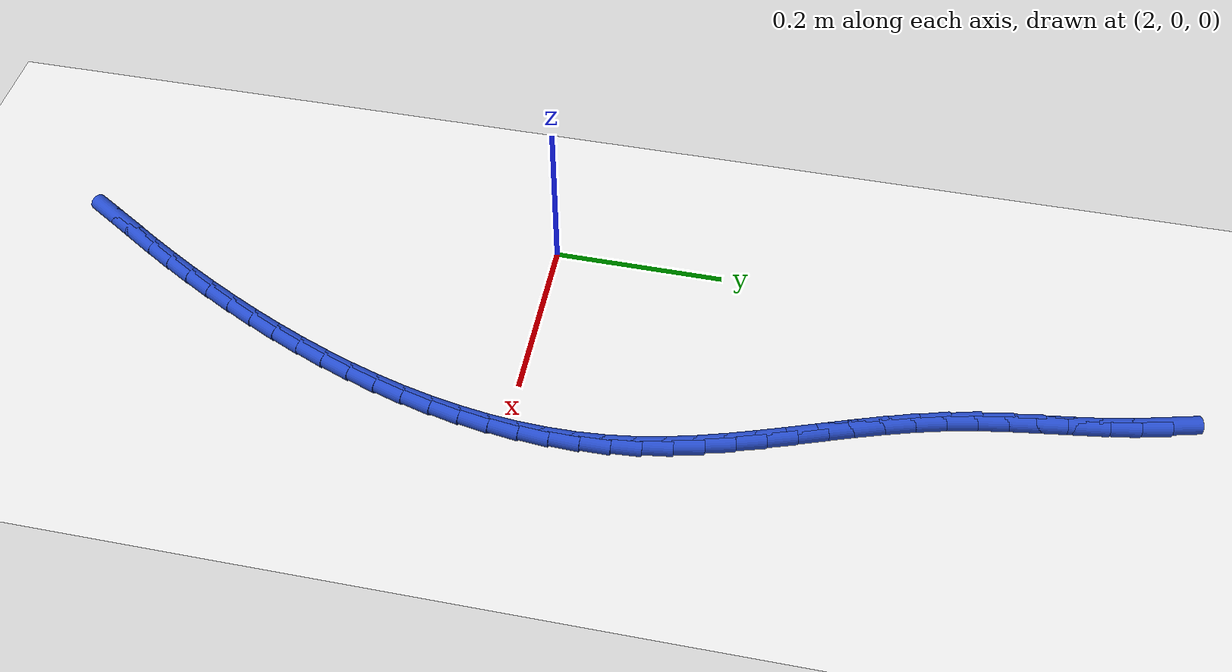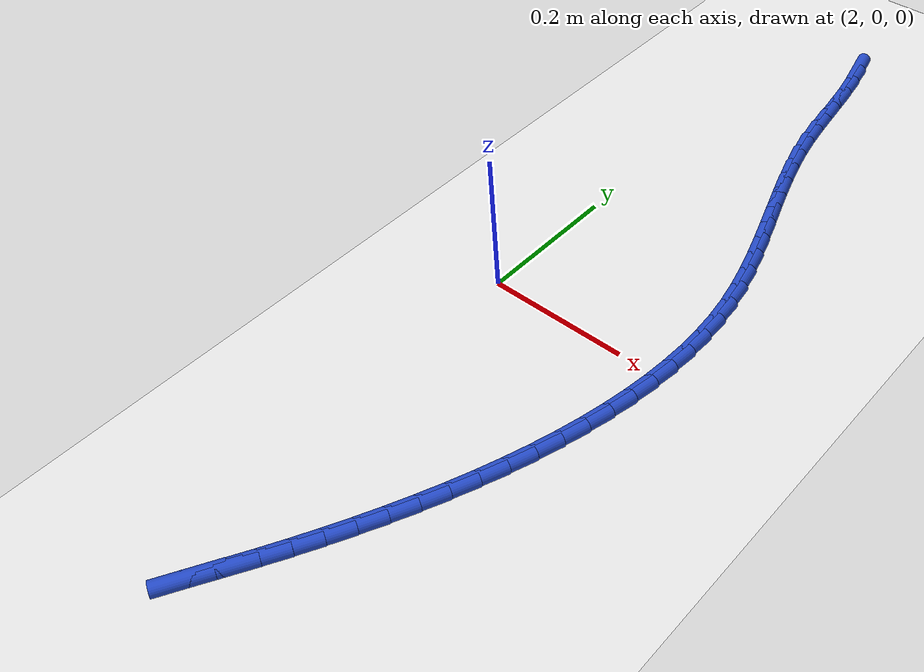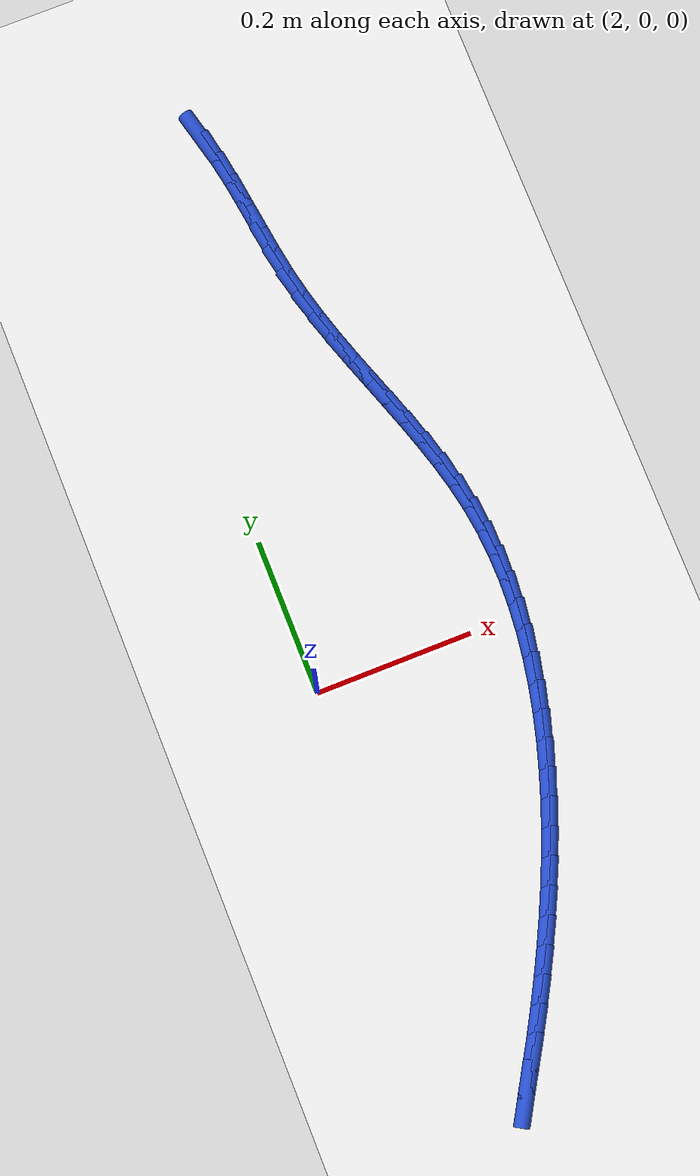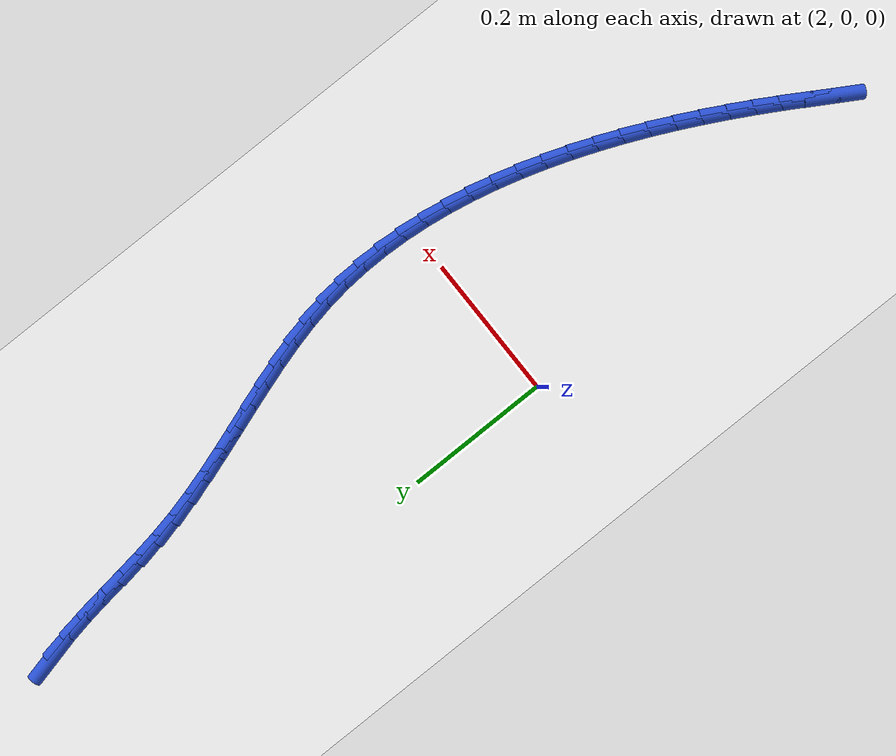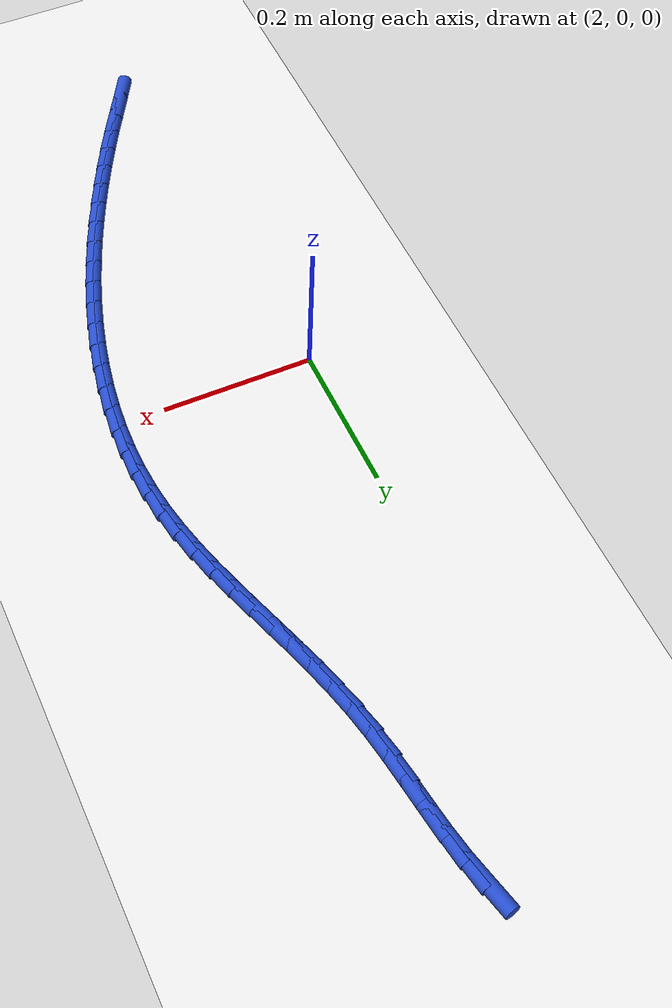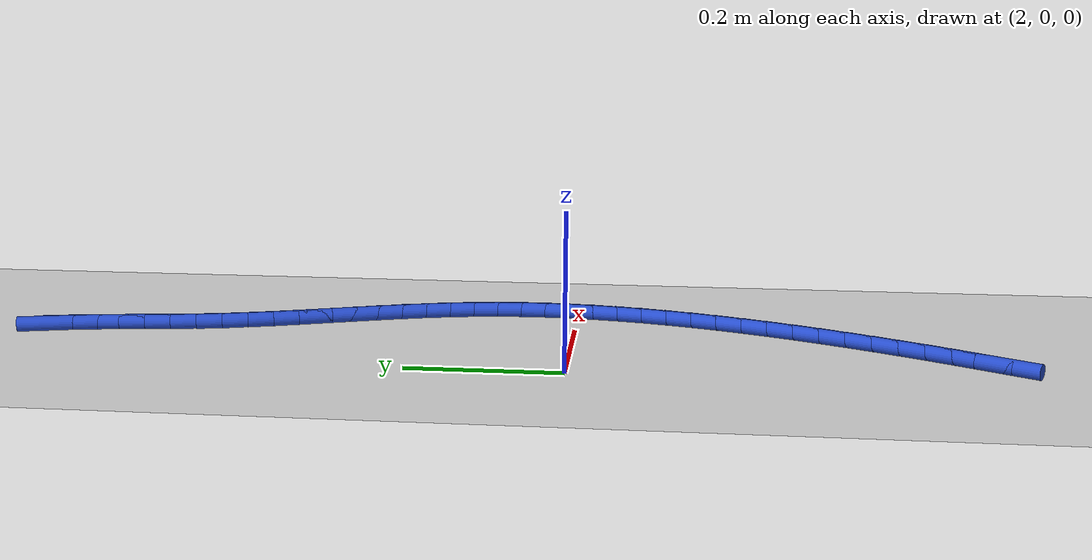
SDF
<sdf version="1.6">
 <world name="default">
  <model name="ground_plane">
   <static>1</static>
   <link name="link">
    <collision name="collision">
     <geometry><plane><normal>0 0 1</normal><size>100 100</size></plane></geometry>
     <surface><friction><ode><mu>100</mu><mu2>50</mu2></ode></friction></surface>
    </collision>
    <visual name="visual">
     <cast_shadows>0</cast_shadows>
     <geometry><plane><normal>0 0 1</normal><size>100 100</size></plane></geometry>
     <material>
      <script><uri>file://media/materials/scripts/gazebo.material</uri><name>Gazebo/WhiteGlow</name></script>
     </material>
    </visual>
   </link>
  </model>
  <model name="line">
   <link name="link_96">
    <pose>2.1214304275904805 0.707417572195336 0.01 0 1.57 -1.3309115815449941</pose>
    <collision name="collision">
     <geometry><cylinder><radius>0.01</radius><length>0.08</length></cylinder></geometry>
    </collision>
    <visual name="visual">
     <material>
      <script><name>Gazebo/Blue</name><uri>file://media/materials/scripts/gazebo.material</uri></script>
     </material>
     <geometry><cylinder><radius>0.01</radius><length>0.08</length></cylinder></geometry>
    </visual>
   </link>
   <link name="link_97">
    <pose>2.129382325662552 0.6749070436614103 0.01 0 1.57 -1.3872177418699192</pose>
    <collision name="collision">
     <geometry><cylinder><radius>0.01</radius><length>0.08</length></cylinder></geometry>
    </collision>
    <visual name="visual">
     <material>
      <script><name>Gazebo/Blue</name><uri>file://media/materials/scripts/gazebo.material</uri></script>
     </material>
     <geometry><cylinder><radius>0.01</radius><length>0.08</length></cylinder></geometry>
    </visual>
   </link>
   <link name="link_98">
    <pose>2.1355470047898937 0.6417045277592021 0.01 0 1.57 -1.42271505567458</pose>
    <collision name="collision">
     <geometry><cylinder><radius>0.01</radius><length>0.08</length></cylinder></geometry>
    </collision>
    <visual name="visual">
     <material>
      <script><name>Gazebo/Blue</name><uri>file://media/materials/scripts/gazebo.material</uri></script>
     </material>
     <geometry><cylinder><radius>0.01</radius><length>0.08</length></cylinder></geometry>
    </visual>
   </link>
   <link name="link_99">
    <pose>2.140573037062782 0.6080119387681541 0.01 0 1.57 -1.4380946989682282</pose>
    <collision name="collision">
     <geometry><cylinder><radius>0.01</radius><length>0.08</length></cylinder></geometry>
    </collision>
    <visual name="visual">
     <material>
      <script><name>Gazebo/Blue</name><uri>file://media/materials/scripts/gazebo.material</uri></script>
     </material>
     <geometry><cylinder><radius>0.01</radius><length>0.08</length></cylinder></geometry>
    </visual>
   </link>
   <link name="link_100">
    <pose>2.1451089945714905 0.5740311909677094 0.01 0 1.57 -1.4338580719014684</pose>
    <collision name="collision">
     <geometry><cylinder><radius>0.01</radius><length>0.08</length></cylinder></geometry>
    </collision>
    <visual name="visual">
     <material>
      <script><name>Gazebo/Blue</name><uri>file://media/materials/scripts/gazebo.material</uri></script>
     </material>
     <geometry><cylinder><radius>0.01</radius><length>0.08</length></cylinder></geometry>
    </visual>
   </link>
   <link name="link_101">
    <pose>2.149803449406294 0.53996419863731 0.01 0 1.57 -1.410151129794178</pose>
    <collision name="collision">
     <geometry><cylinder><radius>0.01</radius><length>0.08</length></cylinder></geometry>
    </collision>
    <visual name="visual">
     <material>
      <script><name>Gazebo/Blue</name><uri>file://media/materials/scripts/gazebo.material</uri></script>
     </material>
     <geometry><cylinder><radius>0.01</radius><length>0.08</length></cylinder></geometry>
    </visual>
   </link>
   <link name="link_102">
    <pose>2.1553049736574668 0.5060128760563992 0.01 0 1.57 -1.3674858045920746</pose>
    <collision name="collision">
     <geometry><cylinder><radius>0.01</radius><length>0.08</length></cylinder></geometry>
    </collision>
    <visual name="visual">
     <material>
      <script><name>Gazebo/Blue</name><uri>file://media/materials/scripts/gazebo.material</uri></script>
     </material>
     <geometry><cylinder><radius>0.01</radius><length>0.08</length></cylinder></geometry>
    </visual>
   </link>
   <link name="link_103">
    <pose>2.16224007630652 0.4723732804706741 0.01 0 1.57 -1.3204690300927302</pose>
    <collision name="collision">
     <geometry><cylinder><radius>0.01</radius><length>0.08</length></cylinder></geometry>
    </collision>
    <visual name="visual">
     <material>
      <script><name>Gazebo/Blue</name><uri>file://media/materials/scripts/gazebo.material</uri></script>
     </material>
     <geometry><cylinder><radius>0.01</radius><length>0.08</length></cylinder></geometry>
    </visual>
   </link>
   <link name="link_104">
    <pose>2.1707448563817935 0.439111281323415 0.01 0 1.57 -1.283645798360765</pose>
    <collision name="collision">
     <geometry><cylinder><radius>0.01</radius><length>0.08</length></cylinder></geometry>
    </collision>
    <visual name="visual">
     <material>
      <script><name>Gazebo/Blue</name><uri>file://media/materials/scripts/gazebo.material</uri></script>
     </material>
     <geometry><cylinder><radius>0.01</radius><length>0.08</length></cylinder></geometry>
    </visual>
   </link>
   <link name="link_105">
    <pose>2.1804742877077503 0.40616502505273666 0.01 0 1.57 -1.257613487869017</pose>
    <collision name="collision">
     <geometry><cylinder><radius>0.01</radius><length>0.08</length></cylinder></geometry>
    </collision>
    <visual name="visual">
     <material>
      <script><name>Gazebo/Blue</name><uri>file://media/materials/scripts/gazebo.material</uri></script>
     </material>
     <geometry><cylinder><radius>0.01</radius><length>0.08</length></cylinder></geometry>
    </visual>
   </link>
   <link name="link_106">
    <pose>2.1910631381626264 0.37346729407892204 0.01 0 1.57 -1.2423012040625667</pose>
    <collision name="collision">
     <geometry><cylinder><radius>0.01</radius><length>0.08</length></cylinder></geometry>
    </collision>
    <visual name="visual">
     <material>
      <script><name>Gazebo/Blue</name><uri>file://media/materials/scripts/gazebo.material</uri></script>
     </material>
     <geometry><cylinder><radius>0.01</radius><length>0.08</length></cylinder></geometry>
    </visual>
   </link>
   <link name="link_107">
    <pose>2.2021461756246623 0.34095087082225267 0.01 0 1.57 -1.2376677779356955</pose>
    <collision name="collision">
     <geometry><cylinder><radius>0.01</radius><length>0.08</length></cylinder></geometry>
    </collision>
    <visual name="visual">
     <material>
      <script><name>Gazebo/Blue</name><uri>file://media/materials/scripts/gazebo.material</uri></script>
     </material>
     <geometry><cylinder><radius>0.01</radius><length>0.08</length></cylinder></geometry>
    </visual>
   </link>
   <link name="link_108">
    <pose>2.2133581679720944 0.3085485377030101 0.01 0 1.57 -1.2437545067400984</pose>
    <collision name="collision">
     <geometry><cylinder><radius>0.01</radius><length>0.08</length></cylinder></geometry>
    </collision>
    <visual name="visual">
     <material>
      <script><name>Gazebo/Blue</name><uri>file://media/materials/scripts/gazebo.material</uri></script>
     </material>
     <geometry><cylinder><radius>0.01</radius><length>0.08</length></cylinder></geometry>
    </visual>
   </link>
   <link name="link_109">
    <pose>2.224333883083161 0.2761930771414772 0.01 0 1.57 -1.2607026342477643</pose>
    <collision name="collision">
     <geometry><cylinder><radius>0.01</radius><length>0.08</length></cylinder></geometry>
    </collision>
    <visual name="visual">
     <material>
      <script><name>Gazebo/Blue</name><uri>file://media/materials/scripts/gazebo.material</uri></script>
     </material>
     <geometry><cylinder><radius>0.01</radius><length>0.08</length></cylinder></geometry>
    </visual>
   </link>
   <link name="link_110">
    <pose>2.2347080888360993 0.24381727155793487 0.01 0 1.57 -1.2887353299201258</pose>
    <collision name="collision">
     <geometry><cylinder><radius>0.01</radius><length>0.08</length></cylinder></geometry>
    </collision>
    <visual name="visual">
     <material>
      <script><name>Gazebo/Blue</name><uri>file://media/materials/scripts/gazebo.material</uri></script>
     </material>
     <geometry><cylinder><radius>0.01</radius><length>0.08</length></cylinder></geometry>
    </visual>
   </link>
   <link name="link_111">
    <pose>2.2441155531091477 0.21135390337266594 0.01 0 1.57 -1.328099796504323</pose>
    <collision name="collision">
     <geometry><cylinder><radius>0.01</radius><length>0.08</length></cylinder></geometry>
    </collision>
    <visual name="visual">
     <material>
      <script><name>Gazebo/Blue</name><uri>file://media/materials/scripts/gazebo.material</uri></script>
     </material>
     <geometry><cylinder><radius>0.01</radius><length>0.08</length></cylinder></geometry>
    </visual>
   </link>
   <link name="link_112">
    <pose>2.252191043780544 0.17873575500595165 0.01 0 1.57 -1.3789624803980303</pose>
    <collision name="collision">
     <geometry><cylinder><radius>0.01</radius><length>0.08</length></cylinder></geometry>
    </collision>
    <visual name="visual">
     <material>
      <script><name>Gazebo/Blue</name><uri>file://media/materials/scripts/gazebo.material</uri></script>
     </material>
     <geometry><cylinder><radius>0.01</radius><length>0.08</length></cylinder></geometry>
    </visual>
   </link>
   <link name="link_113">
    <pose>2.258569328728525 0.14589560887807476 0.01 0 1.57 -1.4399290439317223</pose>
    <collision name="collision">
     <geometry><cylinder><radius>0.01</radius><length>0.08</length></cylinder></geometry>
    </collision>
    <visual name="visual">
     <material>
      <script><name>Gazebo/Blue</name><uri>file://media/materials/scripts/gazebo.material</uri></script>
     </material>
     <geometry><cylinder><radius>0.01</radius><length>0.08</length></cylinder></geometry>
    </visual>
   </link>
   <link name="link_114">
    <pose>2.2629283573355505 0.1127772048320056 0.01 0 1.57 -1.5015535296155236</pose>
    <collision name="collision">
     <geometry><cylinder><radius>0.01</radius><length>0.08</length></cylinder></geometry>
    </collision>
    <visual name="visual">
     <material>
      <script><name>Gazebo/Blue</name><uri>file://media/materials/scripts/gazebo.material</uri></script>
     </material>
     <geometry><cylinder><radius>0.01</radius><length>0.08</length></cylinder></geometry>
    </visual>
   </link>
   <link name="link_115">
    <pose>2.265243211217049 0.07939968081298406 0.01 0 1.57 -1.5597567563432013</pose>
    <collision name="collision">
     <geometry><cylinder><radius>0.01</radius><length>0.08</length></cylinder></geometry>
    </collision>
    <visual name="visual">
     <material>
      <script><name>Gazebo/Blue</name><uri>file://media/materials/scripts/gazebo.material</uri></script>
     </material>
     <geometry><cylinder><radius>0.01</radius><length>0.08</length></cylinder></geometry>
    </visual>
   </link>
   <link name="link_116">
    <pose>2.2656139988661015 0.04581390067229751 0.01 0 1.57 1.5271784345897361</pose>
    <collision name="collision">
     <geometry><cylinder><radius>0.01</radius><length>0.08</length></cylinder></geometry>
    </collision>
    <visual name="visual">
     <material>
      <script><name>Gazebo/Blue</name><uri>file://media/materials/scripts/gazebo.material</uri></script>
     </material>
     <geometry><cylinder><radius>0.01</radius><length>0.08</length></cylinder></geometry>
    </visual>
   </link>
   <link name="link_117">
    <pose>2.2641412635329643 0.012070838582034359 0.01 0 1.57 1.4760798509650361</pose>
    <collision name="collision">
     <geometry><cylinder><radius>0.01</radius><length>0.08</length></cylinder></geometry>
    </collision>
    <visual name="visual">
     <material>
      <script><name>Gazebo/Blue</name><uri>file://media/materials/scripts/gazebo.material</uri></script>
     </material>
     <geometry><cylinder><radius>0.01</radius><length>0.08</length></cylinder></geometry>
    </visual>
   </link>
   <link name="link_118">
    <pose>2.260925548467896 -0.021778531285714064 0.01 0 1.57 1.4284766416392665</pose>
    <collision name="collision">
     <geometry><cylinder><radius>0.01</radius><length>0.08</length></cylinder></geometry>
    </collision>
    <visual name="visual">
     <material>
      <script><name>Gazebo/Blue</name><uri>file://media/materials/scripts/gazebo.material</uri></script>
     </material>
     <geometry><cylinder><radius>0.01</radius><length>0.08</length></cylinder></geometry>
    </visual>
   </link>
   <link name="link_119">
    <pose>2.2560673969211544 -0.05568323475885926 0.01 0 1.57 1.3842493857275326</pose>
    <collision name="collision">
     <geometry><cylinder><radius>0.01</radius><length>0.08</length></cylinder></geometry>
    </collision>
    <visual name="visual">
     <material>
      <script><name>Gazebo/Blue</name><uri>file://media/materials/scripts/gazebo.material</uri></script>
     </material>
     <geometry><cylinder><radius>0.01</radius><length>0.08</length></cylinder></geometry>
    </visual>
   </link>
   <link name="link_120">
    <pose>2.2496673521429966 -0.0895922976653116 0.01 0 1.57 1.3432410412565947</pose>
    <collision name="collision">
     <geometry><cylinder><radius>0.01</radius><length>0.08</length></cylinder></geometry>
    </collision>
    <visual name="visual">
     <material>
      <script><name>Gazebo/Blue</name><uri>file://media/materials/scripts/gazebo.material</uri></script>
     </material>
     <geometry><cylinder><radius>0.01</radius><length>0.08</length></cylinder></geometry>
    </visual>
   </link>
   <link name="link_121">
    <pose>2.241825957383681 -0.12345474583298177 0.01 0 1.57 1.3052720731267067</pose>
    <collision name="collision">
     <geometry><cylinder><radius>0.01</radius><length>0.08</length></cylinder></geometry>
    </collision>
    <visual name="visual">
     <material>
      <script><name>Gazebo/Blue</name><uri>file://media/materials/scripts/gazebo.material</uri></script>
     </material>
     <geometry><cylinder><radius>0.01</radius><length>0.08</length></cylinder></geometry>
    </visual>
   </link>
   <link name="link_122">
    <pose>2.232643755893466 -0.15721960508978103 0.01 0 1.57 1.2701523050011032</pose>
    <collision name="collision">
     <geometry><cylinder><radius>0.01</radius><length>0.08</length></cylinder></geometry>
    </collision>
    <visual name="visual">
     <material>
      <script><name>Gazebo/Blue</name><uri>file://media/materials/scripts/gazebo.material</uri></script>
     </material>
     <geometry><cylinder><radius>0.01</radius><length>0.08</length></cylinder></geometry>
    </visual>
   </link>
   <link name="link_123">
    <pose>2.2222212909226084 -0.19083590126361827 0.01 0 1.57 1.2376897743416546</pose>
    <collision name="collision">
     <geometry><cylinder><radius>0.01</radius><length>0.08</length></cylinder></geometry>
    </collision>
    <visual name="visual">
     <material>
      <script><name>Gazebo/Blue</name><uri>file://media/materials/scripts/gazebo.material</uri></script>
     </material>
     <geometry><cylinder><radius>0.01</radius><length>0.08</length></cylinder></geometry>
    </visual>
   </link>
   <link name="link_124">
    <pose>2.2106591057213674 -0.22425266018240494 0.01 0 1.57 1.2076970543449328</pose>
    <collision name="collision">
     <geometry><cylinder><radius>0.01</radius><length>0.08</length></cylinder></geometry>
    </collision>
    <visual name="visual">
     <material>
      <script><name>Gazebo/Blue</name><uri>file://media/materials/scripts/gazebo.material</uri></script>
     </material>
     <geometry><cylinder><radius>0.01</radius><length>0.08</length></cylinder></geometry>
    </visual>
   </link>
   <link name="link_125">
    <pose>2.1980577435399993 -0.2574189076740514 0.01 0 1.57 1.1799955555713475</pose>
    <collision name="collision">
     <geometry><cylinder><radius>0.01</radius><length>0.08</length></cylinder></geometry>
    </collision>
    <visual name="visual">
     <material>
      <script><name>Gazebo/Blue</name><uri>file://media/materials/scripts/gazebo.material</uri></script>
     </material>
     <geometry><cylinder><radius>0.01</radius><length>0.08</length></cylinder></geometry>
    </visual>
   </link>
   <link name="link_126">
    <pose>2.1845177476287625 -0.2902836695664691 0.01 0 1.57 1.1544182915547168</pose>
    <collision name="collision">
     <geometry><cylinder><radius>0.01</radius><length>0.08</length></cylinder></geometry>
    </collision>
    <visual name="visual">
     <material>
      <script><name>Gazebo/Blue</name><uri>file://media/materials/scripts/gazebo.material</uri></script>
     </material>
     <geometry><cylinder><radius>0.01</radius><length>0.08</length></cylinder></geometry>
    </visual>
   </link>
   <link name="link_127">
    <pose>2.1701396612379145 -0.32279597168756685 0.01 0 1.57 1.1308115280840008</pose>
    <collision name="collision">
     <geometry><cylinder><radius>0.01</radius><length>0.08</length></cylinder></geometry>
    </collision>
    <visual name="visual">
     <material>
      <script><name>Gazebo/Blue</name><uri>file://media/materials/scripts/gazebo.material</uri></script>
     </material>
     <geometry><cylinder><radius>0.01</radius><length>0.08</length></cylinder></geometry>
    </visual>
   </link>
   <link name="link_128">
    <pose>2.1550240276177144 -0.35490483986525617 0.01 0 1.57 1.1090356612193786</pose>
    <collision name="collision">
     <geometry><cylinder><radius>0.01</radius><length>0.08</length></cylinder></geometry>
    </collision>
    <visual name="visual">
     <material>
      <script><name>Gazebo/Blue</name><uri>file://media/materials/scripts/gazebo.material</uri></script>
     </material>
     <geometry><cylinder><radius>0.01</radius><length>0.08</length></cylinder></geometry>
    </visual>
   </link>
   <link name="link_129">
    <pose>2.139271390018419 -0.3865592999274474 0.01 0 1.57 1.088965598948597</pose>
    <collision name="collision">
     <geometry><cylinder><radius>0.01</radius><length>0.08</length></cylinder></geometry>
    </collision>
    <visual name="visual">
     <material>
      <script><name>Gazebo/Blue</name><uri>file://media/materials/scripts/gazebo.material</uri></script>
     </material>
     <geometry><cylinder><radius>0.01</radius><length>0.08</length></cylinder></geometry>
    </visual>
   </link>
   <link name="link_130">
    <pose>2.1229822916902865 -0.41770837770205127 0.01 0 1.57 1.070490862633379</pose>
    <collision name="collision">
     <geometry><cylinder><radius>0.01</radius><length>0.08</length></cylinder></geometry>
    </collision>
    <visual name="visual">
     <material>
      <script><name>Gazebo/Blue</name><uri>file://media/materials/scripts/gazebo.material</uri></script>
     </material>
     <geometry><cylinder><radius>0.01</radius><length>0.08</length></cylinder></geometry>
    </visual>
   </link>
   <link name="link_131">
    <pose>2.106257275883574 -0.44830109901697884 0.01 0 1.57 1.0535155796327818</pose>
    <collision name="collision">
     <geometry><cylinder><radius>0.01</radius><length>0.08</length></cylinder></geometry>
    </collision>
    <visual name="visual">
     <material>
      <script><name>Gazebo/Blue</name><uri>file://media/materials/scripts/gazebo.material</uri></script>
     </material>
     <geometry><cylinder><radius>0.01</radius><length>0.08</length></cylinder></geometry>
    </visual>
   </link>
   <link name="link_132">
    <pose>2.08919688584854 -0.4782864897001392 0.01 0 1.57 1.038023552401614</pose>
    <collision name="collision">
     <geometry><cylinder><radius>0.01</radius><length>0.08</length></cylinder></geometry>
    </collision>
    <visual name="visual">
     <material>
      <script><name>Gazebo/Blue</name><uri>file://media/materials/scripts/gazebo.material</uri></script>
     </material>
     <geometry><cylinder><radius>0.01</radius><length>0.08</length></cylinder></geometry>
    </visual>
   </link>
   <link name="link_133">
    <pose>2.071902964801207 -0.5076157309626493 0.01 0 1.57 1.0292964974443055</pose>
    <collision name="collision">
     <geometry><cylinder><radius>0.01</radius><length>0.08</length></cylinder></geometry>
    </collision>
    <visual name="visual">
     <material>
      <script><name>Gazebo/Blue</name><uri>file://media/materials/scripts/gazebo.material</uri></script>
     </material>
     <geometry><cylinder><radius>0.01</radius><length>0.08</length></cylinder></geometry>
    </visual>
   </link>
   <link name="link_134">
    <pose>2.0545819802846927 -0.5364134743667236 0.01 0 1.57 1.0368444656393059</pose>
    <collision name="collision">
     <geometry><cylinder><radius>0.01</radius><length>0.08</length></cylinder></geometry>
    </collision>
    <visual name="visual">
     <material>
      <script><name>Gazebo/Blue</name><uri>file://media/materials/scripts/gazebo.material</uri></script>
     </material>
     <geometry><cylinder><radius>0.01</radius><length>0.08</length></cylinder></geometry>
    </visual>
   </link>
  </model>
 </world>
</sdf>
